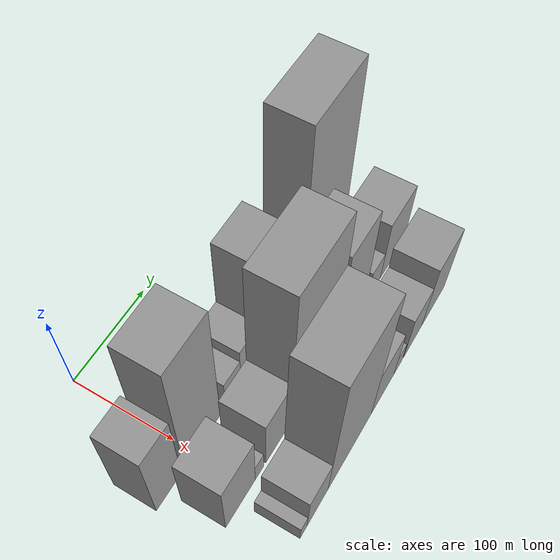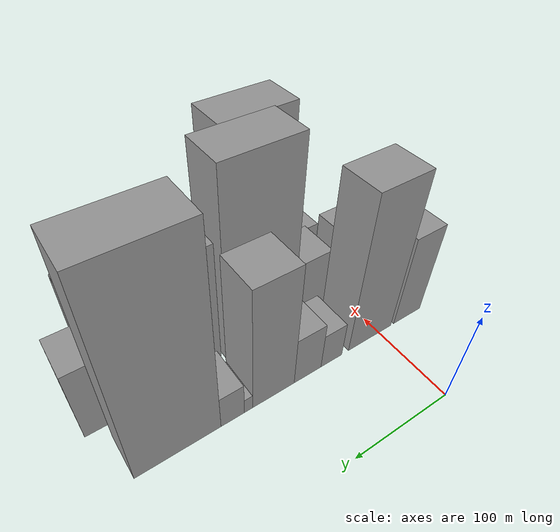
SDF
<sdf version="1.6">
 <world name="default">
  <model name="building_15">
   <static>1</static>
   <pose>100.0000 -36.5058 0 0.000000 0.000000 0.000000</pose>
   <link name="link">
    <pose>0 0 52.50 0 0 0</pose>
    <collision name="collision"><geometry><box><size>40.0000 34.4504 105.0000</size></box></geometry></collision>
    <visual name="visual">
     <cast_shadows>0</cast_shadows>
     <geometry><box><size>40.0000 34.4504 105.0000</size></box></geometry>
     <material>
      <script>
       <uri>model://grey_wall/materials/scripts</uri>
       <uri>model://grey_wall/materials/textures</uri>
       <name>vrc/grey_wall</name>
      </script>
     </material>
    </visual>
   </link>
  </model>
  <model name="building_16">
   <static>1</static>
   <pose>100.0000 10.8693 0 0.000000 0.000000 0.000000</pose>
   <link name="link">
    <pose>0 0 87.00 0 0 0</pose>
    <collision name="collision"><geometry><box><size>40.0000 52.2997 174.0000</size></box></geometry></collision>
    <visual name="visual">
     <cast_shadows>0</cast_shadows>
     <geometry><box><size>40.0000 52.2997 174.0000</size></box></geometry>
     <material>
      <script>
       <uri>model://grey_wall/materials/scripts</uri>
       <uri>model://grey_wall/materials/textures</uri>
       <name>vrc/grey_wall</name>
      </script>
     </material>
    </visual>
   </link>
  </model>
  <model name="building_17">
   <static>1</static>
   <pose>100.0000 56.9608 0 0.000000 0.000000 0.000000</pose>
   <link name="link">
    <pose>0 0 21.00 0 0 0</pose>
    <collision name="collision"><geometry><box><size>40.0000 23.8834 42.0000</size></box></geometry></collision>
    <visual name="visual">
     <cast_shadows>0</cast_shadows>
     <geometry><box><size>40.0000 23.8834 42.0000</size></box></geometry>
     <material>
      <script>
       <uri>model://grey_wall/materials/scripts</uri>
       <uri>model://grey_wall/materials/textures</uri>
       <name>vrc/grey_wall</name>
      </script>
     </material>
    </visual>
   </link>
  </model>
  <model name="building_18">
   <static>1</static>
   <pose>100.0000 83.5557 0 0.000000 0.000000 0.000000</pose>
   <link name="link">
    <pose>0 0 28.50 0 0 0</pose>
    <collision name="collision"><geometry><box><size>40.0000 29.3063 57.0000</size></box></geometry></collision>
    <visual name="visual">
     <cast_shadows>0</cast_shadows>
     <geometry><box><size>40.0000 29.3063 57.0000</size></box></geometry>
     <material>
      <script>
       <uri>model://grey_wall/materials/scripts</uri>
       <uri>model://grey_wall/materials/textures</uri>
       <name>vrc/grey_wall</name>
      </script>
     </material>
    </visual>
   </link>
  </model>
  <model name="building_19">
   <static>1</static>
   <pose>100.0000 119.6079 0 0.000000 0.000000 0.000000</pose>
   <link name="link">
    <pose>0 0 70.50 0 0 0</pose>
    <collision name="collision"><geometry><box><size>40.0000 42.7981 141.0000</size></box></geometry></collision>
    <visual name="visual">
     <cast_shadows>0</cast_shadows>
     <geometry><box><size>40.0000 42.7981 141.0000</size></box></geometry>
     <material>
      <script>
       <uri>model://grey_wall/materials/scripts</uri>
       <uri>model://grey_wall/materials/textures</uri>
       <name>vrc/grey_wall</name>
      </script>
     </material>
    </visual>
   </link>
  </model>
  <model name="building_20">
   <static>1</static>
   <pose>100.0000 144.9795 0 0.000000 0.000000 0.000000</pose>
   <link name="link">
    <pose>0 0 9.00 0 0 0</pose>
    <collision name="collision"><geometry><box><size>40.0000 7.9451 18.0000</size></box></geometry></collision>
    <visual name="visual">
     <cast_shadows>0</cast_shadows>
     <geometry><box><size>40.0000 7.9451 18.0000</size></box></geometry>
     <material>
      <script>
       <uri>model://grey_wall/materials/scripts</uri>
       <uri>model://grey_wall/materials/textures</uri>
       <name>vrc/grey_wall</name>
      </script>
     </material>
    </visual>
   </link>
  </model>
  <model name="building_21">
   <static>1</static>
   <pose>100.0000 160.0698 0 0.000000 0.000000 0.000000</pose>
   <link name="link">
    <pose>0 0 19.50 0 0 0</pose>
    <collision name="collision"><geometry><box><size>40.0000 22.2356 39.0000</size></box></geometry></collision>
    <visual name="visual">
     <cast_shadows>0</cast_shadows>
     <geometry><box><size>40.0000 22.2356 39.0000</size></box></geometry>
     <material>
      <script>
       <uri>model://grey_wall/materials/scripts</uri>
       <uri>model://grey_wall/materials/textures</uri>
       <name>vrc/grey_wall</name>
      </script>
     </material>
    </visual>
   </link>
  </model>
  <model name="building_22">
   <static>1</static>
   <pose>100.0000 208.9474 0 0.000000 0.000000 0.000000</pose>
   <link name="link">
    <pose>0 0 108.00 0 0 0</pose>
    <collision name="collision"><geometry><box><size>40.0000 75.5195 216.0000</size></box></geometry></collision>
    <visual name="visual">
     <cast_shadows>0</cast_shadows>
     <geometry><box><size>40.0000 75.5195 216.0000</size></box></geometry>
     <material>
      <script>
       <uri>model://grey_wall/materials/scripts</uri>
       <uri>model://grey_wall/materials/textures</uri>
       <name>vrc/grey_wall</name>
      </script>
     </material>
    </visual>
   </link>
  </model>
  <model name="building_46">
   <static>1</static>
   <pose>152.0000 -15.9616 0 0.000000 0.000000 0.000000</pose>
   <link name="link">
    <pose>0 0 40.50 0 0 0</pose>
    <collision name="collision"><geometry><box><size>40.0000 42.7795 81.0000</size></box></geometry></collision>
    <visual name="visual">
     <cast_shadows>0</cast_shadows>
     <geometry><box><size>40.0000 42.7795 81.0000</size></box></geometry>
     <material>
      <script>
       <uri>model://grey_wall/materials/scripts</uri>
       <uri>model://grey_wall/materials/textures</uri>
       <name>vrc/grey_wall</name>
      </script>
     </material>
    </visual>
   </link>
  </model>
  <model name="building_47">
   <static>1</static>
   <pose>152.0000 11.9285 0 0.000000 0.000000 0.000000</pose>
   <link name="link">
    <pose>0 0 13.50 0 0 0</pose>
    <collision name="collision"><geometry><box><size>40.0000 13.0005 27.0000</size></box></geometry></collision>
    <visual name="visual">
     <cast_shadows>0</cast_shadows>
     <geometry><box><size>40.0000 13.0005 27.0000</size></box></geometry>
     <material>
      <script>
       <uri>model://grey_wall/materials/scripts</uri>
       <uri>model://grey_wall/materials/textures</uri>
       <name>vrc/grey_wall</name>
      </script>
     </material>
    </visual>
   </link>
  </model>
  <model name="building_48">
   <static>1</static>
   <pose>152.0000 40.6901 0 0.000000 0.000000 0.000000</pose>
   <link name="link">
    <pose>0 0 37.50 0 0 0</pose>
    <collision name="collision"><geometry><box><size>40.0000 38.5228 75.0000</size></box></geometry></collision>
    <visual name="visual">
     <cast_shadows>0</cast_shadows>
     <geometry><box><size>40.0000 38.5228 75.0000</size></box></geometry>
     <material>
      <script>
       <uri>model://grey_wall/materials/scripts</uri>
       <uri>model://grey_wall/materials/textures</uri>
       <name>vrc/grey_wall</name>
      </script>
     </material>
    </visual>
   </link>
  </model>
  <model name="building_49">
   <static>1</static>
   <pose>152.0000 96.4202 0 0.000000 0.000000 0.000000</pose>
   <link name="link">
    <pose>0 0 102.00 0 0 0</pose>
    <collision name="collision"><geometry><box><size>40.0000 72.9375 204.0000</size></box></geometry></collision>
    <visual name="visual">
     <cast_shadows>0</cast_shadows>
     <geometry><box><size>40.0000 72.9375 204.0000</size></box></geometry>
     <material>
      <script>
       <uri>model://grey_wall/materials/scripts</uri>
       <uri>model://grey_wall/materials/textures</uri>
       <name>vrc/grey_wall</name>
      </script>
     </material>
    </visual>
   </link>
  </model>
  <model name="building_50">
   <static>1</static>
   <pose>152.0000 162.1256 0 0.000000 0.000000 0.000000</pose>
   <link name="link">
    <pose>0 0 70.50 0 0 0</pose>
    <collision name="collision"><geometry><box><size>40.0000 46.4732 141.0000</size></box></geometry></collision>
    <visual name="visual">
     <cast_shadows>0</cast_shadows>
     <geometry><box><size>40.0000 46.4732 141.0000</size></box></geometry>
     <material>
      <script>
       <uri>model://grey_wall/materials/scripts</uri>
       <uri>model://grey_wall/materials/textures</uri>
       <name>vrc/grey_wall</name>
      </script>
     </material>
    </visual>
   </link>
  </model>
  <model name="building_51">
   <static>1</static>
   <pose>152.0000 206.7316 0 0.000000 0.000000 0.000000</pose>
   <link name="link">
    <pose>0 0 19.50 0 0 0</pose>
    <collision name="collision"><geometry><box><size>40.0000 22.7387 39.0000</size></box></geometry></collision>
    <visual name="visual">
     <cast_shadows>0</cast_shadows>
     <geometry><box><size>40.0000 22.7387 39.0000</size></box></geometry>
     <material>
      <script>
       <uri>model://grey_wall/materials/scripts</uri>
       <uri>model://grey_wall/materials/textures</uri>
       <name>vrc/grey_wall</name>
      </script>
     </material>
    </visual>
   </link>
  </model>
  <model name="building_52">
   <static>1</static>
   <pose>152.0000 241.5072 0 0.000000 0.000000 0.000000</pose>
   <link name="link">
    <pose>0 0 40.50 0 0 0</pose>
    <collision name="collision"><geometry><box><size>40.0000 46.8126 81.0000</size></box></geometry></collision>
    <visual name="visual">
     <cast_shadows>0</cast_shadows>
     <geometry><box><size>40.0000 46.8126 81.0000</size></box></geometry>
     <material>
      <script>
       <uri>model://grey_wall/materials/scripts</uri>
       <uri>model://grey_wall/materials/textures</uri>
       <name>vrc/grey_wall</name>
      </script>
     </material>
    </visual>
   </link>
  </model>
  <model name="building_73">
   <static>1</static>
   <pose>204.0000 -10.4134 0 0.000000 0.000000 0.000000</pose>
   <link name="link">
    <pose>0 0 12.00 0 0 0</pose>
    <collision name="collision"><geometry><box><size>40.0000 10.3255 24.0000</size></box></geometry></collision>
    <visual name="visual">
     <cast_shadows>0</cast_shadows>
     <geometry><box><size>40.0000 10.3255 24.0000</size></box></geometry>
     <material>
      <script>
       <uri>model://grey_wall/materials/scripts</uri>
       <uri>model://grey_wall/materials/textures</uri>
       <name>vrc/grey_wall</name>
      </script>
     </material>
    </visual>
   </link>
  </model>
  <model name="building_74">
   <static>1</static>
   <pose>204.0000 11.2459 0 0.000000 0.000000 0.000000</pose>
   <link name="link">
    <pose>0 0 28.50 0 0 0</pose>
    <collision name="collision"><geometry><box><size>40.0000 32.9931 57.0000</size></box></geometry></collision>
    <visual name="visual">
     <cast_shadows>0</cast_shadows>
     <geometry><box><size>40.0000 32.9931 57.0000</size></box></geometry>
     <material>
      <script>
       <uri>model://grey_wall/materials/scripts</uri>
       <uri>model://grey_wall/materials/textures</uri>
       <name>vrc/grey_wall</name>
      </script>
     </material>
    </visual>
   </link>
  </model>
  <model name="building_75">
   <static>1</static>
   <pose>204.0000 63.8894 0 0.000000 0.000000 0.000000</pose>
   <link name="link">
    <pose>0 0 97.50 0 0 0</pose>
    <collision name="collision"><geometry><box><size>40.0000 72.2939 195.0000</size></box></geometry></collision>
    <visual name="visual">
     <cast_shadows>0</cast_shadows>
     <geometry><box><size>40.0000 72.2939 195.0000</size></box></geometry>
     <material>
      <script>
       <uri>model://grey_wall/materials/scripts</uri>
       <uri>model://grey_wall/materials/textures</uri>
       <name>vrc/grey_wall</name>
      </script>
     </material>
    </visual>
   </link>
  </model>
  <model name="building_76">
   <static>1</static>
   <pose>204.0000 120.1993 0 0.000000 0.000000 0.000000</pose>
   <link name="link">
    <pose>0 0 36.00 0 0 0</pose>
    <collision name="collision"><geometry><box><size>40.0000 40.3258 72.0000</size></box></geometry></collision>
    <visual name="visual">
     <cast_shadows>0</cast_shadows>
     <geometry><box><size>40.0000 40.3258 72.0000</size></box></geometry>
     <material>
      <script>
       <uri>model://grey_wall/materials/scripts</uri>
       <uri>model://grey_wall/materials/textures</uri>
       <name>vrc/grey_wall</name>
      </script>
     </material>
    </visual>
   </link>
  </model>
  <model name="building_77">
   <static>1</static>
   <pose>204.0000 148.2552 0 0.000000 0.000000 0.000000</pose>
   <link name="link">
    <pose>0 0 15.00 0 0 0</pose>
    <collision name="collision"><geometry><box><size>40.0000 15.7862 30.0000</size></box></geometry></collision>
    <visual name="visual">
     <cast_shadows>0</cast_shadows>
     <geometry><box><size>40.0000 15.7862 30.0000</size></box></geometry>
     <material>
      <script>
       <uri>model://grey_wall/materials/scripts</uri>
       <uri>model://grey_wall/materials/textures</uri>
       <name>vrc/grey_wall</name>
      </script>
     </material>
    </visual>
   </link>
  </model>
  <model name="building_78">
   <static>1</static>
   <pose>204.0000 176.3835 0 0.000000 0.000000 0.000000</pose>
   <link name="link">
    <pose>0 0 31.50 0 0 0</pose>
    <collision name="collision"><geometry><box><size>40.0000 34.4703 63.0000</size></box></geometry></collision>
    <visual name="visual">
     <cast_shadows>0</cast_shadows>
     <geometry><box><size>40.0000 34.4703 63.0000</size></box></geometry>
     <material>
      <script>
       <uri>model://grey_wall/materials/scripts</uri>
       <uri>model://grey_wall/materials/textures</uri>
       <name>vrc/grey_wall</name>
      </script>
     </material>
    </visual>
   </link>
  </model>
  <model name="building_79">
   <static>1</static>
   <pose>204.0000 216.2301 0 0.000000 0.000000 0.000000</pose>
   <link name="link">
    <pose>0 0 45.00 0 0 0</pose>
    <collision name="collision"><geometry><box><size>40.0000 45.2229 90.0000</size></box></geometry></collision>
    <visual name="visual">
     <cast_shadows>0</cast_shadows>
     <geometry><box><size>40.0000 45.2229 90.0000</size></box></geometry>
     <material>
      <script>
       <uri>model://grey_wall/materials/scripts</uri>
       <uri>model://grey_wall/materials/textures</uri>
       <name>vrc/grey_wall</name>
      </script>
     </material>
    </visual>
   </link>
  </model>
 </world>
</sdf>
